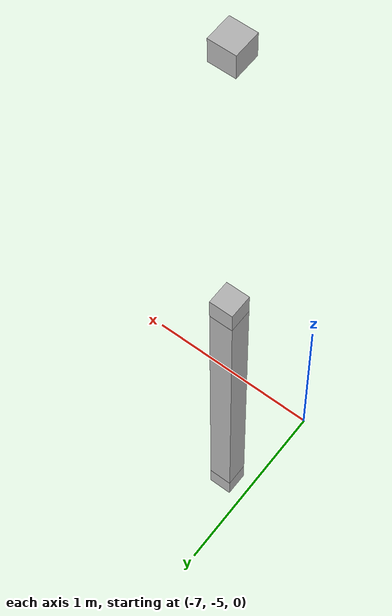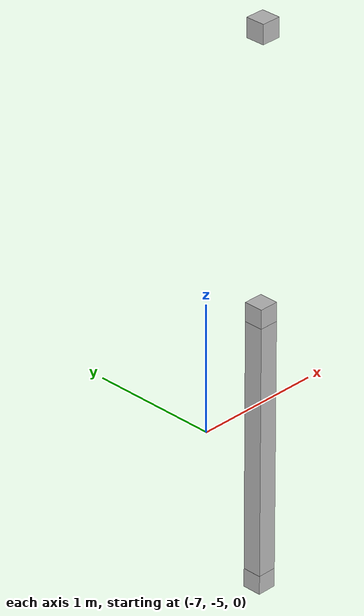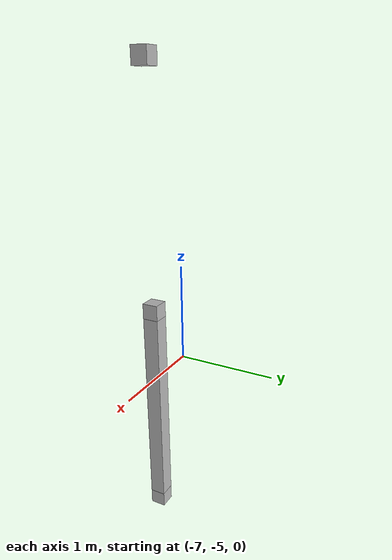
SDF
<sdf version="1.7">
 <world name="default">
  <model name="orthogonal_747_2.000.15_TS">
   <static>1</static>
   <link name="u_link_0_0_0">
    <inertial>
     <mass>1</mass>
     <inertia>
      <ixx>0.166667</ixx>
      <ixy>0</ixy>
      <ixz>0</ixz>
      <iyy>0.166667</iyy>
      <iyz>0</iyz>
      <izz>0.166667</izz>
     </inertia>
    </inertial>
    <pose>0 0 1.075 0 -0 0</pose>
    <visual name="visual_0">
     <laser_retro>15</laser_retro>
     <geometry><box><size>0.15 1e-06 0.15</size></box></geometry>
     <material>
      <script><name>Gazebo/Grey</name><uri>file://media/materials/scripts/gazebo.material</uri></script>
      <shader type="pixel"><normal_map>__default__</normal_map></shader>
      <ambient>0.678 0.498 0.659 1</ambient>
      <diffuse>0.7 0.7 0.7 1</diffuse>
      <specular>0.01 0.01 0.01 1</specular>
      <emissive>0 0 0 1</emissive>
     </material>
     <pose>0 -0.075 0 0 -0 0</pose>
     <transparency>1</transparency>
    </visual>
    <visual name="visual_1">
     <laser_retro>16</laser_retro>
     <geometry><box><size>0.15 1e-06 0.15</size></box></geometry>
     <material>
      <script><name>Gazebo/Grey</name><uri>file://media/materials/scripts/gazebo.material</uri></script>
      <shader type="pixel"><normal_map>__default__</normal_map></shader>
      <ambient>0.447 0.624 0.812 1</ambient>
      <diffuse>0.7 0.7 0.7 1</diffuse>
      <specular>0.01 0.01 0.01 1</specular>
      <emissive>0 0 0 1</emissive>
     </material>
     <pose>0 0.075 0 0 -0 0</pose>
     <transparency>1</transparency>
    </visual>
    <visual name="visual_2">
     <laser_retro>17</laser_retro>
     <geometry><box><size>0.15 0.15 1e-06</size></box></geometry>
     <material>
      <script><name>Gazebo/Grey</name><uri>file://media/materials/scripts/gazebo.material</uri></script>
      <shader type="pixel"><normal_map>__default__</normal_map></shader>
      <ambient>0.988 0.686 0.243 1</ambient>
      <diffuse>0.7 0.7 0.7 1</diffuse>
      <specular>0.01 0.01 0.01 1</specular>
      <emissive>0 0 0 1</emissive>
     </material>
     <pose>0 0 -0.075 0 -0 0</pose>
     <transparency>1</transparency>
    </visual>
    <visual name="visual_3">
     <laser_retro>18</laser_retro>
     <geometry><box><size>1e-06 0.15 0.15</size></box></geometry>
     <material>
      <script><name>Gazebo/Grey</name><uri>file://media/materials/scripts/gazebo.material</uri></script>
      <shader type="pixel"><normal_map>__default__</normal_map></shader>
      <ambient>0.988 0.914 0.31 1</ambient>
      <diffuse>0.7 0.7 0.7 1</diffuse>
      <specular>0.01 0.01 0.01 1</specular>
      <emissive>0 0 0 1</emissive>
     </material>
     <pose>0.075 0 0 0 -0 0</pose>
     <transparency>1</transparency>
    </visual>
    <visual name="visual_4">
     <laser_retro>19</laser_retro>
     <geometry><box><size>0.15 0.15 1e-06</size></box></geometry>
     <material>
      <script><name>Gazebo/Grey</name><uri>file://media/materials/scripts/gazebo.material</uri></script>
      <shader type="pixel"><normal_map>__default__</normal_map></shader>
      <ambient>0.937 0.161 0.161 1</ambient>
      <diffuse>0.7 0.7 0.7 1</diffuse>
      <specular>0.01 0.01 0.01 1</specular>
      <emissive>0 0 0 1</emissive>
     </material>
     <pose>0 0 0.075 0 -0 0</pose>
     <transparency>1</transparency>
    </visual>
    <visual name="visual_5">
     <laser_retro>20</laser_retro>
     <geometry><box><size>1e-06 0.15 0.15</size></box></geometry>
     <material>
      <script><name>Gazebo/Grey</name><uri>file://media/materials/scripts/gazebo.material</uri></script>
      <shader type="pixel"><normal_map>__default__</normal_map></shader>
      <ambient>0.541 0.886 0.204 1</ambient>
      <diffuse>0.7 0.7 0.7 1</diffuse>
      <specular>0.01 0.01 0.01 1</specular>
      <emissive>0 0 0 1</emissive>
     </material>
     <pose>-0.075 0 0 0 -0 0</pose>
     <transparency>1</transparency>
    </visual>
    <visual name="visual_texture">
     <geometry><box><size>0.149985 0.149985 0.149985</size></box></geometry>
     <material>
      <script>
       <uri>model://BASE_MODELS/simple_block_v2_textured/materials/scripts</uri>
       <uri>model://BASE_MODELS/simple_block_v2_textured/materials/textures</uri>
       <name>metal</name>
      </script>
     </material>
     <laser_retro>21</laser_retro>
    </visual>
    <collision name="collision">
     <geometry><box><size>0.15 0.15 0.15</size></box></geometry>
     <surface>
      <friction>
       <ode><mu>1</mu><mu2>1</mu2><fdir1>0 0 0</fdir1><slip1>0</slip1><slip2>0</slip2></ode>
       <torsional>
        <coefficient>1</coefficient>
        <patch_radius>0</patch_radius>
        <surface_radius>0</surface_radius>
        <use_patch_radius>1</use_patch_radius>
        <ode><slip>0</slip></ode>
       </torsional>
      </friction>
      <bounce><restitution_coefficient>0</restitution_coefficient><threshold>1e+06</threshold></bounce>
      <contact>
       <collide_without_contact>0</collide_without_contact>
       <collide_without_contact_bitmask>1</collide_without_contact_bitmask>
       <collide_bitmask>1</collide_bitmask>
       <ode>
        <soft_cfm>0</soft_cfm>
        <soft_erp>0.2</soft_erp>
        <kp>1e+13</kp>
        <kd>1</kd>
        <max_vel>0.01</max_vel>
        <min_depth>0</min_depth>
       </ode>
       <bullet>
        <split_impulse>1</split_impulse>
        <split_impulse_penetration_threshold>-0.01</split_impulse_penetration_threshold>
        <soft_cfm>0</soft_cfm>
        <soft_erp>0.2</soft_erp>
        <kp>1e+13</kp>
        <kd>1</kd>
       </bullet>
      </contact>
     </surface>
    </collision>
   </link>
   <link name="u_link_1_0_0">
    <inertial>
     <mass>1</mass>
     <inertia>
      <ixx>0.166667</ixx>
      <ixy>0</ixy>
      <ixz>0</ixz>
      <iyy>0.166667</iyy>
      <iyz>0</iyz>
      <izz>0.166667</izz>
     </inertia>
    </inertial>
    <pose>0 0 3.225 0 -0 0</pose>
    <visual name="visual_0">
     <laser_retro>764</laser_retro>
     <geometry><box><size>0.15 1e-06 0.15</size></box></geometry>
     <material>
      <script><name>Gazebo/Grey</name><uri>file://media/materials/scripts/gazebo.material</uri></script>
      <shader type="pixel"><normal_map>__default__</normal_map></shader>
      <ambient>0.678 0.498 0.659 1</ambient>
      <diffuse>0.7 0.7 0.7 1</diffuse>
      <specular>0.01 0.01 0.01 1</specular>
      <emissive>0 0 0 1</emissive>
     </material>
     <pose>0 -0.075 0 0 -0 0</pose>
     <transparency>1</transparency>
    </visual>
    <visual name="visual_1">
     <laser_retro>765</laser_retro>
     <geometry><box><size>0.15 1e-06 0.15</size></box></geometry>
     <material>
      <script><name>Gazebo/Grey</name><uri>file://media/materials/scripts/gazebo.material</uri></script>
      <shader type="pixel"><normal_map>__default__</normal_map></shader>
      <ambient>0.447 0.624 0.812 1</ambient>
      <diffuse>0.7 0.7 0.7 1</diffuse>
      <specular>0.01 0.01 0.01 1</specular>
      <emissive>0 0 0 1</emissive>
     </material>
     <pose>0 0.075 0 0 -0 0</pose>
     <transparency>1</transparency>
    </visual>
    <visual name="visual_2">
     <laser_retro>766</laser_retro>
     <geometry><box><size>0.15 0.15 1e-06</size></box></geometry>
     <material>
      <script><name>Gazebo/Grey</name><uri>file://media/materials/scripts/gazebo.material</uri></script>
      <shader type="pixel"><normal_map>__default__</normal_map></shader>
      <ambient>0.988 0.686 0.243 1</ambient>
      <diffuse>0.7 0.7 0.7 1</diffuse>
      <specular>0.01 0.01 0.01 1</specular>
      <emissive>0 0 0 1</emissive>
     </material>
     <pose>0 0 -0.075 0 -0 0</pose>
     <transparency>1</transparency>
    </visual>
    <visual name="visual_3">
     <laser_retro>767</laser_retro>
     <geometry><box><size>1e-06 0.15 0.15</size></box></geometry>
     <material>
      <script><name>Gazebo/Grey</name><uri>file://media/materials/scripts/gazebo.material</uri></script>
      <shader type="pixel"><normal_map>__default__</normal_map></shader>
      <ambient>0.988 0.914 0.31 1</ambient>
      <diffuse>0.7 0.7 0.7 1</diffuse>
      <specular>0.01 0.01 0.01 1</specular>
      <emissive>0 0 0 1</emissive>
     </material>
     <pose>0.075 0 0 0 -0 0</pose>
     <transparency>1</transparency>
    </visual>
    <visual name="visual_4">
     <laser_retro>768</laser_retro>
     <geometry><box><size>0.15 0.15 1e-06</size></box></geometry>
     <material>
      <script><name>Gazebo/Grey</name><uri>file://media/materials/scripts/gazebo.material</uri></script>
      <shader type="pixel"><normal_map>__default__</normal_map></shader>
      <ambient>0.937 0.161 0.161 1</ambient>
      <diffuse>0.7 0.7 0.7 1</diffuse>
      <specular>0.01 0.01 0.01 1</specular>
      <emissive>0 0 0 1</emissive>
     </material>
     <pose>0 0 0.075 0 -0 0</pose>
     <transparency>1</transparency>
    </visual>
    <visual name="visual_5">
     <laser_retro>769</laser_retro>
     <geometry><box><size>1e-06 0.15 0.15</size></box></geometry>
     <material>
      <script><name>Gazebo/Grey</name><uri>file://media/materials/scripts/gazebo.material</uri></script>
      <shader type="pixel"><normal_map>__default__</normal_map></shader>
      <ambient>0.541 0.886 0.204 1</ambient>
      <diffuse>0.7 0.7 0.7 1</diffuse>
      <specular>0.01 0.01 0.01 1</specular>
      <emissive>0 0 0 1</emissive>
     </material>
     <pose>-0.075 0 0 0 -0 0</pose>
     <transparency>1</transparency>
    </visual>
    <visual name="visual_texture">
     <geometry><box><size>0.149985 0.149985 0.149985</size></box></geometry>
     <material>
      <script>
       <uri>model://BASE_MODELS/simple_block_v2_textured/materials/scripts</uri>
       <uri>model://BASE_MODELS/simple_block_v2_textured/materials/textures</uri>
       <name>metal</name>
      </script>
     </material>
     <laser_retro>770</laser_retro>
    </visual>
    <collision name="collision">
     <geometry><box><size>0.15 0.15 0.15</size></box></geometry>
     <surface>
      <friction>
       <ode><mu>1</mu><mu2>1</mu2><fdir1>0 0 0</fdir1><slip1>0</slip1><slip2>0</slip2></ode>
       <torsional>
        <coefficient>1</coefficient>
        <patch_radius>0</patch_radius>
        <surface_radius>0</surface_radius>
        <use_patch_radius>1</use_patch_radius>
        <ode><slip>0</slip></ode>
       </torsional>
      </friction>
      <bounce><restitution_coefficient>0</restitution_coefficient><threshold>1e+06</threshold></bounce>
      <contact>
       <collide_without_contact>0</collide_without_contact>
       <collide_without_contact_bitmask>1</collide_without_contact_bitmask>
       <collide_bitmask>1</collide_bitmask>
       <ode>
        <soft_cfm>0</soft_cfm>
        <soft_erp>0.2</soft_erp>
        <kp>1e+13</kp>
        <kd>1</kd>
        <max_vel>0.01</max_vel>
        <min_depth>0</min_depth>
       </ode>
       <bullet>
        <split_impulse>1</split_impulse>
        <split_impulse_penetration_threshold>-0.01</split_impulse_penetration_threshold>
        <soft_cfm>0</soft_cfm>
        <soft_erp>0.2</soft_erp>
        <kp>1e+13</kp>
        <kd>1</kd>
       </bullet>
      </contact>
     </surface>
    </collision>
   </link>
   <link name="z_link_1_0_0">
    <inertial>
     <mass>1</mass>
     <inertia>
      <ixx>0.166667</ixx>
      <ixy>0</ixy>
      <ixz>0</ixz>
      <iyy>0.166667</iyy>
      <iyz>0</iyz>
      <izz>0.166667</izz>
     </inertia>
    </inertial>
    <pose>0 0 2.15 0 -0 0</pose>
    <visual name="visual_0">
     <laser_retro>771</laser_retro>
     <geometry><box><size>0.15 1e-06 2</size></box></geometry>
     <material>
      <script><name>Gazebo/Grey</name><uri>file://media/materials/scripts/gazebo.material</uri></script>
      <shader type="pixel"><normal_map>__default__</normal_map></shader>
      <ambient>0.678 0.498 0.659 1</ambient>
      <diffuse>0.7 0.7 0.7 1</diffuse>
      <specular>0.01 0.01 0.01 1</specular>
      <emissive>0 0 0 1</emissive>
     </material>
     <pose>0 -0.075 0 0 -0 0</pose>
     <transparency>1</transparency>
    </visual>
    <visual name="visual_1">
     <laser_retro>772</laser_retro>
     <geometry><box><size>0.15 1e-06 2</size></box></geometry>
     <material>
      <script><name>Gazebo/Grey</name><uri>file://media/materials/scripts/gazebo.material</uri></script>
      <shader type="pixel"><normal_map>__default__</normal_map></shader>
      <ambient>0.447 0.624 0.812 1</ambient>
      <diffuse>0.7 0.7 0.7 1</diffuse>
      <specular>0.01 0.01 0.01 1</specular>
      <emissive>0 0 0 1</emissive>
     </material>
     <pose>0 0.075 0 0 -0 0</pose>
     <transparency>1</transparency>
    </visual>
    <visual name="visual_2">
     <laser_retro>773</laser_retro>
     <geometry><box><size>0.15 0.15 1e-06</size></box></geometry>
     <material>
      <script><name>Gazebo/Grey</name><uri>file://media/materials/scripts/gazebo.material</uri></script>
      <shader type="pixel"><normal_map>__default__</normal_map></shader>
      <ambient>0.988 0.686 0.243 1</ambient>
      <diffuse>0.7 0.7 0.7 1</diffuse>
      <specular>0.01 0.01 0.01 1</specular>
      <emissive>0 0 0 1</emissive>
     </material>
     <pose>0 0 -1 0 -0 0</pose>
     <transparency>1</transparency>
    </visual>
    <visual name="visual_3">
     <laser_retro>774</laser_retro>
     <geometry><box><size>1e-06 0.15 2</size></box></geometry>
     <material>
      <script><name>Gazebo/Grey</name><uri>file://media/materials/scripts/gazebo.material</uri></script>
      <shader type="pixel"><normal_map>__default__</normal_map></shader>
      <ambient>0.988 0.914 0.31 1</ambient>
      <diffuse>0.7 0.7 0.7 1</diffuse>
      <specular>0.01 0.01 0.01 1</specular>
      <emissive>0 0 0 1</emissive>
     </material>
     <pose>0.075 0 0 0 -0 0</pose>
     <transparency>1</transparency>
    </visual>
    <visual name="visual_4">
     <laser_retro>775</laser_retro>
     <geometry><box><size>0.15 0.15 1e-06</size></box></geometry>
     <material>
      <script><name>Gazebo/Grey</name><uri>file://media/materials/scripts/gazebo.material</uri></script>
      <shader type="pixel"><normal_map>__default__</normal_map></shader>
      <ambient>0.937 0.161 0.161 1</ambient>
      <diffuse>0.7 0.7 0.7 1</diffuse>
      <specular>0.01 0.01 0.01 1</specular>
      <emissive>0 0 0 1</emissive>
     </material>
     <pose>0 0 1 0 -0 0</pose>
     <transparency>1</transparency>
    </visual>
    <visual name="visual_5">
     <laser_retro>776</laser_retro>
     <geometry><box><size>1e-06 0.15 2</size></box></geometry>
     <material>
      <script><name>Gazebo/Grey</name><uri>file://media/materials/scripts/gazebo.material</uri></script>
      <shader type="pixel"><normal_map>__default__</normal_map></shader>
      <ambient>0.541 0.886 0.204 1</ambient>
      <diffuse>0.7 0.7 0.7 1</diffuse>
      <specular>0.01 0.01 0.01 1</specular>
      <emissive>0 0 0 1</emissive>
     </material>
     <pose>-0.075 0 0 0 -0 0</pose>
     <transparency>1</transparency>
    </visual>
    <visual name="visual_texture">
     <geometry><box><size>0.149985 0.149985 1.9998</size></box></geometry>
     <material>
      <script>
       <uri>model://BASE_MODELS/simple_block_v2_textured/materials/scripts</uri>
       <uri>model://BASE_MODELS/simple_block_v2_textured/materials/textures</uri>
       <name>metal</name>
      </script>
     </material>
     <laser_retro>777</laser_retro>
    </visual>
    <collision name="collision">
     <geometry><box><size>0.15 0.15 2</size></box></geometry>
     <surface>
      <friction>
       <ode><mu>1</mu><mu2>1</mu2><fdir1>0 0 0</fdir1><slip1>0</slip1><slip2>0</slip2></ode>
       <torsional>
        <coefficient>1</coefficient>
        <patch_radius>0</patch_radius>
        <surface_radius>0</surface_radius>
        <use_patch_radius>1</use_patch_radius>
        <ode><slip>0</slip></ode>
       </torsional>
      </friction>
      <bounce><restitution_coefficient>0</restitution_coefficient><threshold>1e+06</threshold></bounce>
      <contact>
       <collide_without_contact>0</collide_without_contact>
       <collide_without_contact_bitmask>1</collide_without_contact_bitmask>
       <collide_bitmask>1</collide_bitmask>
       <ode>
        <soft_cfm>0</soft_cfm>
        <soft_erp>0.2</soft_erp>
        <kp>1e+13</kp>
        <kd>1</kd>
        <max_vel>0.01</max_vel>
        <min_depth>0</min_depth>
       </ode>
       <bullet>
        <split_impulse>1</split_impulse>
        <split_impulse_penetration_threshold>-0.01</split_impulse_penetration_threshold>
        <soft_cfm>0</soft_cfm>
        <soft_erp>0.2</soft_erp>
        <kp>1e+13</kp>
        <kd>1</kd>
       </bullet>
      </contact>
     </surface>
    </collision>
   </link>
   <link name="u_link_2_0_0">
    <inertial>
     <mass>1</mass>
     <inertia>
      <ixx>0.166667</ixx>
      <ixy>0</ixy>
      <ixz>0</ixz>
      <iyy>0.166667</iyy>
      <iyz>0</iyz>
      <izz>0.166667</izz>
     </inertia>
    </inertial>
    <pose>0 0 5.375 0 -0 0</pose>
    <visual name="visual_0">
     <laser_retro>1667</laser_retro>
     <geometry><box><size>0.15 1e-06 0.15</size></box></geometry>
     <material>
      <script><name>Gazebo/Grey</name><uri>file://media/materials/scripts/gazebo.material</uri></script>
      <shader type="pixel"><normal_map>__default__</normal_map></shader>
      <ambient>0.678 0.498 0.659 1</ambient>
      <diffuse>0.7 0.7 0.7 1</diffuse>
      <specular>0.01 0.01 0.01 1</specular>
      <emissive>0 0 0 1</emissive>
     </material>
     <pose>0 -0.075 0 0 -0 0</pose>
     <transparency>1</transparency>
    </visual>
    <visual name="visual_1">
     <laser_retro>1668</laser_retro>
     <geometry><box><size>0.15 1e-06 0.15</size></box></geometry>
     <material>
      <script><name>Gazebo/Grey</name><uri>file://media/materials/scripts/gazebo.material</uri></script>
      <shader type="pixel"><normal_map>__default__</normal_map></shader>
      <ambient>0.447 0.624 0.812 1</ambient>
      <diffuse>0.7 0.7 0.7 1</diffuse>
      <specular>0.01 0.01 0.01 1</specular>
      <emissive>0 0 0 1</emissive>
     </material>
     <pose>0 0.075 0 0 -0 0</pose>
     <transparency>1</transparency>
    </visual>
    <visual name="visual_2">
     <laser_retro>1669</laser_retro>
     <geometry><box><size>0.15 0.15 1e-06</size></box></geometry>
     <material>
      <script><name>Gazebo/Grey</name><uri>file://media/materials/scripts/gazebo.material</uri></script>
      <shader type="pixel"><normal_map>__default__</normal_map></shader>
      <ambient>0.988 0.686 0.243 1</ambient>
      <diffuse>0.7 0.7 0.7 1</diffuse>
      <specular>0.01 0.01 0.01 1</specular>
      <emissive>0 0 0 1</emissive>
     </material>
     <pose>0 0 -0.075 0 -0 0</pose>
     <transparency>1</transparency>
    </visual>
    <visual name="visual_3">
     <laser_retro>1670</laser_retro>
     <geometry><box><size>1e-06 0.15 0.15</size></box></geometry>
     <material>
      <script><name>Gazebo/Grey</name><uri>file://media/materials/scripts/gazebo.material</uri></script>
      <shader type="pixel"><normal_map>__default__</normal_map></shader>
      <ambient>0.988 0.914 0.31 1</ambient>
      <diffuse>0.7 0.7 0.7 1</diffuse>
      <specular>0.01 0.01 0.01 1</specular>
      <emissive>0 0 0 1</emissive>
     </material>
     <pose>0.075 0 0 0 -0 0</pose>
     <transparency>1</transparency>
    </visual>
    <visual name="visual_4">
     <laser_retro>1671</laser_retro>
     <geometry><box><size>0.15 0.15 1e-06</size></box></geometry>
     <material>
      <script><name>Gazebo/Grey</name><uri>file://media/materials/scripts/gazebo.material</uri></script>
      <shader type="pixel"><normal_map>__default__</normal_map></shader>
      <ambient>0.937 0.161 0.161 1</ambient>
      <diffuse>0.7 0.7 0.7 1</diffuse>
      <specular>0.01 0.01 0.01 1</specular>
      <emissive>0 0 0 1</emissive>
     </material>
     <pose>0 0 0.075 0 -0 0</pose>
     <transparency>1</transparency>
    </visual>
    <visual name="visual_5">
     <laser_retro>1672</laser_retro>
     <geometry><box><size>1e-06 0.15 0.15</size></box></geometry>
     <material>
      <script><name>Gazebo/Grey</name><uri>file://media/materials/scripts/gazebo.material</uri></script>
      <shader type="pixel"><normal_map>__default__</normal_map></shader>
      <ambient>0.541 0.886 0.204 1</ambient>
      <diffuse>0.7 0.7 0.7 1</diffuse>
      <specular>0.01 0.01 0.01 1</specular>
      <emissive>0 0 0 1</emissive>
     </material>
     <pose>-0.075 0 0 0 -0 0</pose>
     <transparency>1</transparency>
    </visual>
    <visual name="visual_texture">
     <geometry><box><size>0.149985 0.149985 0.149985</size></box></geometry>
     <material>
      <script>
       <uri>model://BASE_MODELS/simple_block_v2_textured/materials/scripts</uri>
       <uri>model://BASE_MODELS/simple_block_v2_textured/materials/textures</uri>
       <name>metal</name>
      </script>
     </material>
     <laser_retro>1673</laser_retro>
    </visual>
    <collision name="collision">
     <geometry><box><size>0.15 0.15 0.15</size></box></geometry>
     <surface>
      <friction>
       <ode><mu>1</mu><mu2>1</mu2><fdir1>0 0 0</fdir1><slip1>0</slip1><slip2>0</slip2></ode>
       <torsional>
        <coefficient>1</coefficient>
        <patch_radius>0</patch_radius>
        <surface_radius>0</surface_radius>
        <use_patch_radius>1</use_patch_radius>
        <ode><slip>0</slip></ode>
       </torsional>
      </friction>
      <bounce><restitution_coefficient>0</restitution_coefficient><threshold>1e+06</threshold></bounce>
      <contact>
       <collide_without_contact>0</collide_without_contact>
       <collide_without_contact_bitmask>1</collide_without_contact_bitmask>
       <collide_bitmask>1</collide_bitmask>
       <ode>
        <soft_cfm>0</soft_cfm>
        <soft_erp>0.2</soft_erp>
        <kp>1e+13</kp>
        <kd>1</kd>
        <max_vel>0.01</max_vel>
        <min_depth>0</min_depth>
       </ode>
       <bullet>
        <split_impulse>1</split_impulse>
        <split_impulse_penetration_threshold>-0.01</split_impulse_penetration_threshold>
        <soft_cfm>0</soft_cfm>
        <soft_erp>0.2</soft_erp>
        <kp>1e+13</kp>
        <kd>1</kd>
       </bullet>
      </contact>
     </surface>
    </collision>
   </link>
   <pose>-6.47624 -5 -2.5 0 -0 0</pose>
  </model>
 </world>
</sdf>
